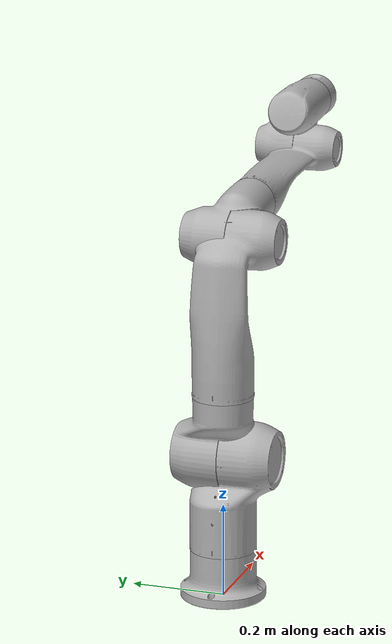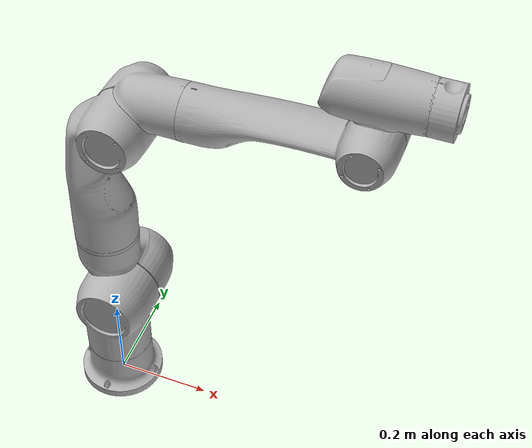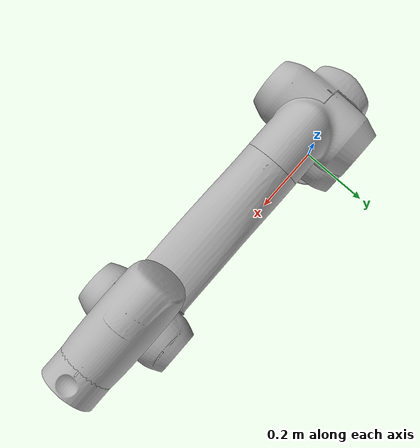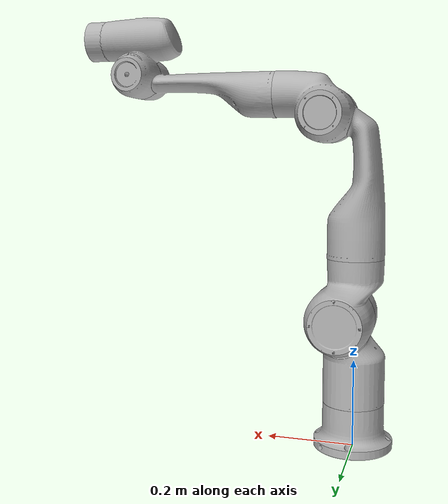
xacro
<?xml version="1.0"?>
<robot xmlns:xacro="http://ros.org/wiki/xacro"
       name="DianaV1" >

  <xacro:arg name="transmission_hw_interface" default="hardware_interface/PositionJointInterface"/>

  <!-- common stuff -->
  <xacro:include filename="$(find dianaV1_description)/urdf/common.gazebo.xacro" />

  <!-- DianaV1 -->
  <xacro:include filename="$(find dianaV1_description)/urdf/DianaV1.urdf.xacro" />

  <!-- arm -->
  <xacro:DianaV1_robot prefix="" joint_limited="true"
    joint1_limitL="${-90.0/180.0*pi}"  joint1_limitU="${90.0/180.0*pi}"
    joint2_limitL="${0.0/180.0*pi}"    joint2_limitU="${70.0/180.0*pi}"
    joint3_limitL="${0.0/180.0*pi}"    joint3_limitU="${0.0/180.0*pi}"
    joint4_limitL="${0.0/180.0*pi}"    joint4_limitU="${50.0/180.0*pi}"
    joint5_limitL="${-90.0/180.0*pi}"  joint5_limitU="${90.0/180.0*pi}"
    joint6_limitL="${0.0/180.0*pi}"    joint6_limitU="${20.0/180.0*pi}"
    joint7_limitL="${0.0/180.0*pi}"    joint7_limitU="${0.0/180.0*pi}"
    transmission_hw_interface="$(arg transmission_hw_interface)"
  />

  <link name="world" />

  <joint name="world_joint" type="fixed">
    <parent link="world" />
    <child link = "base_link" />
    <origin xyz="0.0 0.0 0.0" rpy="0.0 0.0 0.0" />
  </joint>

</robot>

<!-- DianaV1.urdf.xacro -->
<robot xmlns:xacro="http://ros.org/wiki/xacro">

  <xacro:include filename="$(find dianaV1_description)/urdf/Diana.transmission.xacro" />
  <xacro:include filename="$(find dianaV1_description)/urdf/Diana.gazebo.xacro" />

  <xacro:macro name="DianaV1_robot" params="prefix joint_limited
    joint1_limitL:=${-170.0/180.0*pi}  joint1_limitU:=${170.0/180.0*pi}
    joint2_limitL:=${-120.0/180.0*pi}    joint2_limitU:=${70.0/180.0*pi}
    joint3_limitL:=${-170.0/180.0*pi}    joint3_limitU:=${170.0/180.0*pi}
    joint4_limitL:=${-88.0/180.0*pi}    joint4_limitU:=${50.0/180.0*pi}
    joint5_limitL:=${-170.0/180.0*pi}  joint5_limitU:=${170.0/180.0*pi}
    joint6_limitL:=${-170.0/180.0*pi}    joint6_limitU:=${20.0/180.0*pi}
    joint7_limitL:=${-170.0/180.0*pi}    joint7_limitU:=${170.0/180.0*pi}
    transmission_hw_interface:=hardware_interface/PositionJointInterface
    safety_limits:=false safety_pos_margin:=0.15
    safety_k_position:=20 safety_k_velocity:=0.0">

    <!-- Kinematic model -->
    <xacro:property name="d1" value="-0.30000" />
    <xacro:property name="d2" value="0.00000" />
    <xacro:property name="d3" value="-0.45856" />
    <xacro:property name="d4" value="0.00000" />
    <xacro:property name="d5" value="-0.44903" />
    <xacro:property name="d6" value="0.00000" />
    <xacro:property name="d7" value="-0.13140" />

    <xacro:property name="a1" value="0.00000" />
    <xacro:property name="a2" value="0.02982" />
    <xacro:property name="a3" value="-0.02982" />
    <xacro:property name="a4" value="0.06768" />
    <xacro:property name="a5" value="-0.04744" />
    <xacro:property name="a6" value="-0.04639" />
    <xacro:property name="a7" value="-0.08791" />

    <xacro:property name="alpha1" value="${pi}" />
    <xacro:property name="alpha2" value="${-0.5*pi}" />
    <xacro:property name="alpha3" value="${0.5*pi}" />
    <xacro:property name="alpha4" value="${-0.5*pi}" />
    <xacro:property name="alpha5" value="${0.5*pi}" />
    <xacro:property name="alpha6" value="${-0.5*pi}" />
    <xacro:property name="alpha7" value="${0.5*pi}" />

    <xacro:property name="joint_effort" value="50.0" />
    <xacro:property name="joint_vel" value="3.14" />
    <xacro:property name="joint_damp" value="0.0" />
    <xacro:property name="joint_frict" value="0.0" />

    <link name="${prefix}base_link">
      <visual>
        <origin yz="0 0 0" rpy="0 0 0" />
        <geometry>
          <mesh filename="package://dianaV1_description/meshes/base_link.STL" />
        </geometry>
        <material name="LightGrey">
          <color rgba="0.7 0.7 0.7 1" />
        </material>
      </visual>
      <collision>
        <origin xyz="0 0 0" rpy="0 0 0" />
        <geometry>
          <mesh filename="package://dianaV1_description/meshes/base_link.STL" />
        </geometry>
      </collision>
    </link>
    <joint name="${prefix}joint1" type="revolute">
      <origin xyz="0 0 ${-d1}" rpy="${alpha1} 0 0" />
      <parent link="${prefix}base_link" />
      <child link="${prefix}link1" />
      <axis xyz="0 0 1" />
      <limit lower="${joint1_limitL}" upper="${joint1_limitU}" effort="${joint_effort}" velocity="${joint_vel}" />
      <xacro:if value="${safety_limits}">
        <safety_controller soft_lower_limit="${joint1_limitL + safety_pos_margin}" soft_upper_limit="${joint1_limitU - safety_pos_margin}"
          k_position="${safety_k_position}" k_velocity="${safety_k_velocity}"/>
      </xacro:if>
      <dynamics damping="${joint_damp}" friction="${joint_frict}"/>
    </joint>
    <link name="${prefix}link1">
      <inertial>
        <origin xyz="0.0171 0.0 0.0762" rpy="0 0 0" />
        <mass value="7.057" />
        <inertia
          ixx="0.0"
          ixy="0.0"
          ixz="0.0"
          iyy="0.0"
          iyz="0.0"
          izz="0.023" />
      </inertial>
      <visual>
        <origin xyz="0 0 0" rpy="0 0 0" />
        <geometry>
          <mesh filename="package://dianaV1_description/meshes/link1.STL" />
        </geometry>
        <material name="LightGrey">
          <color rgba="0.7 0.7 0.7 1" />
        </material>
      </visual>
      <collision>
        <origin xyz="0 0 0" rpy="0 0 0" />
        <geometry>
          <mesh filename="package://dianaV1_description/meshes/link1.STL" />
        </geometry>
      </collision>
    </link>
    <joint name="${prefix}joint2" type="revolute">
      <origin xyz="${a2} 0 0" rpy="${alpha2} 0 0" />
      <parent link="${prefix}link1" />
      <child link="${prefix}link2" />
      <axis xyz="0 0 1" />
      <limit lower="${joint2_limitL}" upper="${joint2_limitU}" effort="${joint_effort}" velocity="${joint_vel}" />
      <xacro:if value="${safety_limits}">
        <safety_controller soft_lower_limit="${joint2_limitL + safety_pos_margin}" soft_upper_limit="${joint2_limitU - safety_pos_margin}"
          k_position="${safety_k_position}" k_velocity="${safety_k_velocity}"/>
      </xacro:if>
      <dynamics damping="${joint_damp}" friction="${joint_frict}"/>
    </joint>
    <link name="${prefix}link2">
      <inertial>
        <origin xyz="-0.0147 0.0491 -0.036" rpy="0 0 0" />
        <mass value="3.367" />
        <inertia
          ixx="0.0335"
          ixy="0.0"
          ixz="0.0"
          iyy="0.0161"
          iyz="0.0"
          izz="0.0286" />
      </inertial>
      <visual>
        <origin xyz="0 0 0" rpy="0 0 0" />
        <geometry>
          <mesh filename="package://dianaV1_description/meshes/link2.STL" />
        </geometry>
        <material name="LightGrey">
          <color rgba="0.7 0.7 0.7 1" />
        </material>
      </visual>
      <collision>
        <origin xyz="0 0 0" rpy="0 0 0" />
        <geometry>
          <mesh filename="package://dianaV1_description/meshes/link2.STL" />
        </geometry>
      </collision>
    </link>
    <joint name="${prefix}joint3" type="revolute">
      <origin xyz="${a3} ${-d3} 0" rpy="${alpha3} 0 0" />
      <parent link="${prefix}link2" />
      <child link="${prefix}link3" />
      <axis xyz="0 0 1" />
      <limit lower="${joint3_limitL}" upper="${joint3_limitU}" effort="${joint_effort}" velocity="${joint_vel}" />
      <xacro:if value="${safety_limits}">
        <safety_controller soft_lower_limit="${joint3_limitL + safety_pos_margin}" soft_upper_limit="${joint3_limitU - safety_pos_margin}"
          k_position="${safety_k_position}" k_velocity="${safety_k_velocity}"/>
      </xacro:if>
      <dynamics damping="${joint_damp}" friction="${joint_frict}"/>
    </joint>
    <link name="${prefix}link3">
      <inertial>
        <origin xyz="0.0283 0.0035 0.134" rpy="0 0 0" />
        <mass value="4.949" />
        <inertia
          ixx="0.1981"
          ixy="0.0"
          ixz="0.0"
          iyy="0.2068"
          iyz="0.0"
          izz="0.0207" />
      </inertial>
      <visual>
        <origin xyz="0 0 0" rpy="0 0 0" />
        <geometry>
          <mesh filename="package://dianaV1_description/meshes/link3.STL" />
        </geometry>
        <material name="LightGrey">
          <color rgba="0.7 0.7 0.7 1" />
        </material>
      </visual>
      <collision>
        <origin xyz="0 0 0" rpy="0 0 0" />
        <geometry>
          <mesh filename="package://dianaV1_description/meshes/link3.STL" />
        </geometry>
      </collision>
    </link>
    <joint name="${prefix}joint4" type="revolute">
      <origin xyz="${a4} 0 0" rpy="${alpha4} ${-pi/2.0} 0" />
      <parent link="${prefix}link3" />
      <child link="${prefix}link4" />
      <axis xyz="0 0 1" />
      <limit lower="${joint4_limitL}" upper="${joint4_limitU}" effort="${joint_effort}" velocity="${joint_vel}" />
      <xacro:if value="${safety_limits}">
        <safety_controller soft_lower_limit="${joint4_limitL + safety_pos_margin}" soft_upper_limit="${joint4_limitU - safety_pos_margin}"
          k_position="${safety_k_position}" k_velocity="${safety_k_velocity}"/>
      </xacro:if>
      <dynamics damping="${joint_damp}" friction="${joint_frict}"/>
    </joint>
    <link name="${prefix}link4">
      <inertial>
        <origin xyz="-0.0284 0.0426 -0.0222" rpy="0 0 0" />
        <mass value="2.347" />
        <inertia
          ixx="0.0154"
          ixy="0.0"
          ixz="0.0"
          iyy="0.0"
          iyz="0.0"
          izz="0.0167" />
      </inertial>
      <visual>
        <origin xyz="0 0 0" rpy="0 0 0" />
        <geometry>
          <mesh filename="package://dianaV1_description/meshes/link4.STL" />
        </geometry>
        <material name="LightGrey">
          <color rgba="0.7 0.7 0.7 1" />
        </material>
      </visual>
      <collision>
        <origin xyz="0 0 0" rpy="0 0 0" />
        <geometry>
          <mesh filename="package://dianaV1_description/meshes/link4.STL" />
        </geometry>
      </collision>
    </link>
    <joint name="${prefix}joint5" type="revolute">
      <origin xyz="${a5} ${-d5} 0" rpy="${alpha5} 0 0" />
      <parent link="${prefix}link4" />
      <child link="${prefix}link5" />
      <axis xyz="0 0 1" />
      <limit lower="${joint5_limitL}" upper="${joint5_limitU}" effort="${joint_effort}" velocity="${joint_vel}" />
      <xacro:if value="${safety_limits}">
        <safety_controller soft_lower_limit="${joint5_limitL + safety_pos_margin}" soft_upper_limit="${joint5_limitU - safety_pos_margin}"
          k_position="${safety_k_position}" k_velocity="${safety_k_velocity}"/>
      </xacro:if>
      <dynamics damping="${joint_damp}" friction="${joint_frict}"/>
    </joint>
    <link name="${prefix}link5">
      <inertial>
        <origin xyz="-0.0253 0.0007 0.1455" rpy="0 0 0" />
        <mass value="3.2554" />
        <inertia
          ixx="0.1459"
          ixy="0.0"
          ixz="0.0"
          iyy="0.1481"
          iyz="0.0"
          izz="0.0" />
      </inertial>
      <visual>
        <origin xyz="0 0 0" rpy="0 0 0" />
        <geometry>
          <mesh filename="package://dianaV1_description/meshes/link5.STL" />
        </geometry>
        <material name="LightGrey">
          <color rgba="0.7 0.7 0.7 1" />
        </material>
      </visual>
      <collision>
        <origin xyz="0 0 0" rpy="0 0 0" />
        <geometry>
          <mesh filename="package://dianaV1_description/meshes/link5.STL" />
        </geometry>
      </collision>
    </link>
    <joint name="${prefix}joint6" type="revolute">
      <origin xyz="${a6} 0 0" rpy="${alpha6} 0 0" />
      <parent link="${prefix}link5" />
      <child link="${prefix}link6" />
      <axis xyz="0 0 1" />
      <limit lower="${joint6_limitL}" upper="${joint6_limitU}" effort="${joint_effort}" velocity="${joint_vel}" />
      <xacro:if value="${safety_limits}">
        <safety_controller soft_lower_limit="${joint6_limitL + safety_pos_margin}" soft_upper_limit="${joint6_limitU - safety_pos_margin}"
          k_position="${safety_k_position}" k_velocity="${safety_k_velocity}"/>
      </xacro:if>
      <dynamics damping="${joint_damp}" friction="${joint_frict}"/>
    </joint>
    <link name="${prefix}link6">
      <inertial>
        <origin xyz="-0.0613 0.0202 -0.0143" rpy="0 0 0" />
        <mass value="2.627" />
        <inertia
          ixx="0.0"
          ixy="0.0"
          ixz="0.0"
          iyy="0.0189"
          iyz="0.0"
          izz="0.0207" />
      </inertial>
      <visual>
        <origin xyz="0 0 0" rpy="0 0 0" />
        <geometry>
          <mesh filename="package://dianaV1_description/meshes/link6.STL" />
        </geometry>
        <material name="LightGrey">
          <color rgba="0.7 0.7 0.7 1" />
        </material>
      </visual>
      <collision>
        <origin xyz="0 0 0" rpy="0 0 0" />
        <geometry>
          <mesh filename="package://dianaV1_description/meshes/link6.STL" />
        </geometry>
      </collision>
    </link>
    <joint name="${prefix}joint7" type="revolute">
      <origin xyz="${a7} ${-d7} 0" rpy="${alpha7} 0 0" />
      <parent link="${prefix}link6" />
      <child link="${prefix}link7" />
      <axis xyz="0 0 1" />
      <limit lower="${joint7_limitL}" upper="${joint7_limitU}" effort="${joint_effort}" velocity="${joint_vel}" />
      <xacro:if value="${safety_limits}">
        <safety_controller soft_lower_limit="${joint7_limitL + safety_pos_margin}" soft_upper_limit="${joint7_limitU - safety_pos_margin}"
          k_position="${safety_k_position}" k_velocity="${safety_k_velocity}"/>
      </xacro:if>
      <dynamics damping="${joint_damp}" friction="${joint_frict}"/>
    </joint>
    <link name="${prefix}link7">
      <inertial>
        <origin xyz="0.0 0.0 0.0452" rpy="0 0 0" />
        <mass value="0.77" />
        <inertia
          ixx="0.0"
          ixy="0.0"
          ixz="0.0"
          iyy="0.0"
          iyz="0.0"
          izz="0.0" />
      </inertial>
      <visual>
        <origin xyz="0 0 0" rpy="0 0 0" />
        <geometry>
          <mesh filename="package://dianaV1_description/meshes/link7.STL" />
        </geometry>
        <material name="LightGrey">
          <color rgba="0.7 0.7 0.7 1" />
        </material>
      </visual>
      <collision>
        <origin xyz="0 0 0" rpy="0 0 0" />
        <geometry>
          <mesh filename="package://dianaV1_description/meshes/link7.STL" />
        </geometry>
      </collision>
    </link>

    <xacro:Diana_arm_transmission prefix="${prefix}" hw_interface="${transmission_hw_interface}" />
    <xacro:Diana_arm_gazebo prefix="${prefix}" />

  </xacro:macro>
</robot>
